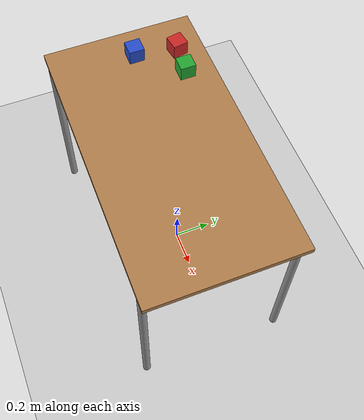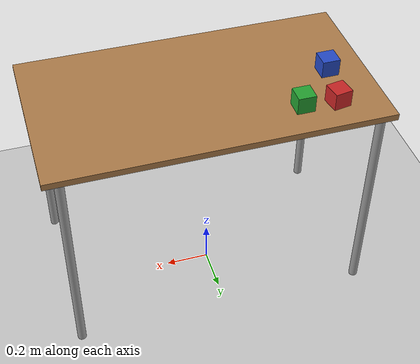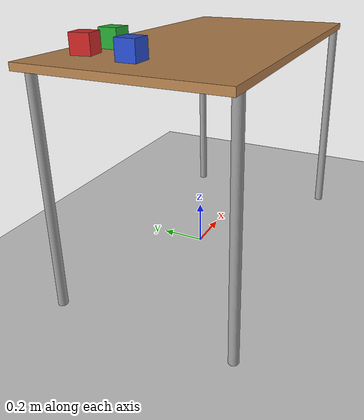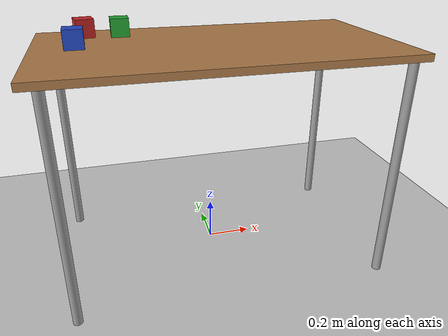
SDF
<sdf version="1.6">
 <world name="default">
  <model name="ground_plane">
   <static>1</static>
   <link name="link">
    <collision name="collision">
     <geometry><plane><normal>0 0 1</normal><size>100 100</size></plane></geometry>
     <surface>
      <contact><collide_bitmask>65535</collide_bitmask></contact>
      <friction><ode><mu>100</mu><mu2>50</mu2></ode></friction>
     </surface>
    </collision>
    <visual name="visual">
     <cast_shadows>0</cast_shadows>
     <geometry><plane><normal>0 0 1</normal><size>100 100</size></plane></geometry>
     <material>
      <script><uri>file://media/materials/scripts/gazebo.material</uri><name>Gazebo/Grey</name></script>
     </material>
    </visual>
   </link>
  </model>
  <light name="sun" type="directional">
   <pose>0 0 10 0 -0 0</pose>
   <diffuse>0.8 0.8 0.8 1</diffuse>
   <specular>0.2 0.2 0.2 1</specular>
   <attenuation>
    <range>1000</range>
    <constant>0.9</constant>
    <linear>0.01</linear>
    <quadratic>0.001</quadratic>
   </attenuation>
   <direction>-0.5 0.1 -0.9</direction>
  </light>
  <physics name="default_physics" default="0" type="ode">
   <max_step_size>0.001</max_step_size>
   <real_time_factor>1</real_time_factor>
   <real_time_update_rate>1000</real_time_update_rate>
  </physics>
  <gravity>0 0 -9.81</gravity>
  <magnetic_field>6e-06 2.3e-05 -4.2e-05</magnetic_field>
  <atmosphere type="adiabatic"/>
  <scene><ambient>0.4 0.4 0.4 1</ambient><background>0.7 0.7 0.7 1</background><shadows>1</shadows></scene>
  <audio><device>default</device></audio>
  <spherical_coordinates>
   <surface_model>EARTH_WGS84</surface_model>
   <latitude_deg>0</latitude_deg>
   <longitude_deg>0</longitude_deg>
   <elevation>0</elevation>
   <heading_deg>0</heading_deg>
  </spherical_coordinates>
  <model name="table_clone">
   <static>1</static>
   <link name="link">
    <collision name="surface">
     <pose>0 0 1 0 -0 0</pose>
     <geometry><box><size>1.5 0.8 0.03</size></box></geometry>
     <surface><friction><ode><mu>0.6</mu><mu2>0.6</mu2></ode></friction></surface>
    </collision>
    <visual name="visual1">
     <pose>0 0 1 0 -0 0</pose>
     <geometry><box><size>1.5 0.8 0.03</size></box></geometry>
     <material>
      <script><uri>file://media/materials/scripts/gazebo.material</uri><name>Gazebo/Wood</name></script>
     </material>
    </visual>
    <collision name="front_left_leg">
     <pose>0.68 0.38 0.5 0 -0 0</pose>
     <geometry><cylinder><radius>0.02</radius><length>1</length></cylinder></geometry>
    </collision>
    <visual name="front_left_leg">
     <pose>0.68 0.38 0.5 0 -0 0</pose>
     <geometry><cylinder><radius>0.02</radius><length>1</length></cylinder></geometry>
     <material>
      <script><uri>file://media/materials/scripts/gazebo.material</uri><name>Gazebo/Grey</name></script>
     </material>
    </visual>
    <collision name="front_right_leg">
     <pose>0.68 -0.38 0.5 0 -0 0</pose>
     <geometry><cylinder><radius>0.02</radius><length>1</length></cylinder></geometry>
    </collision>
    <visual name="front_right_leg">
     <pose>0.68 -0.38 0.5 0 -0 0</pose>
     <geometry><cylinder><radius>0.02</radius><length>1</length></cylinder></geometry>
     <material>
      <script><uri>file://media/materials/scripts/gazebo.material</uri><name>Gazebo/Grey</name></script>
     </material>
    </visual>
    <collision name="back_right_leg">
     <pose>-0.68 -0.38 0.5 0 -0 0</pose>
     <geometry><cylinder><radius>0.02</radius><length>1</length></cylinder></geometry>
    </collision>
    <visual name="back_right_leg">
     <pose>-0.68 -0.38 0.5 0 -0 0</pose>
     <geometry><cylinder><radius>0.02</radius><length>1</length></cylinder></geometry>
     <material>
      <script><uri>file://media/materials/scripts/gazebo.material</uri><name>Gazebo/Grey</name></script>
     </material>
    </visual>
    <collision name="back_left_leg">
     <pose>-0.68 0.38 0.5 0 -0 0</pose>
     <geometry><cylinder><radius>0.02</radius><length>1</length></cylinder></geometry>
    </collision>
    <visual name="back_left_leg">
     <pose>-0.68 0.38 0.5 0 -0 0</pose>
     <geometry><cylinder><radius>0.02</radius><length>1</length></cylinder></geometry>
     <material>
      <script><uri>file://media/materials/scripts/gazebo.material</uri><name>Gazebo/Grey</name></script>
     </material>
    </visual>
   </link>
   <pose>0.016255 -0.067797 0 0 -0 0</pose>
  </model>
  <model name="GreenBox">
   <link name="link">
    <inertial>
     <mass>0.29</mass>
     <inertia>
      <ixx>0.00193333</ixx>
      <ixy>0</ixy>
      <ixz>0</ixz>
      <iyy>0.00193333</iyy>
      <iyz>0</iyz>
      <izz>0.00193333</izz>
     </inertia>
    </inertial>
    <visual name="visual">
     <geometry><box><size>0.08 0.08 0.08</size></box></geometry>
     <material>
      <script><name>Gazebo/Green</name><uri>file://media/materials/scripts/gazebo.material</uri></script>
      <shader type="vertex"><normal_map>__default__</normal_map></shader>
      <ambient>0 0.3 0 1</ambient>
      <diffuse>0.7 0.7 0.7 1</diffuse>
      <specular>0.01 0.01 0.01 1</specular>
      <emissive>0 0 0 1</emissive>
     </material>
    </visual>
    <collision name="collision">
     <geometry><box><size>0.081 0.081 0.081</size></box></geometry>
     <surface>
      <friction>
       <ode><mu>1</mu><mu2>1</mu2><fdir1>0 0 0</fdir1><slip1>0</slip1><slip2>0</slip2></ode>
       <torsional>
        <coefficient>1</coefficient>
        <patch_radius>0</patch_radius>
        <surface_radius>0</surface_radius>
        <use_patch_radius>1</use_patch_radius>
        <ode><slip>0</slip></ode>
       </torsional>
      </friction>
      <bounce><restitution_coefficient>0</restitution_coefficient><threshold>1e+06</threshold></bounce>
      <contact>
       <collide_without_contact>0</collide_without_contact>
       <collide_without_contact_bitmask>1</collide_without_contact_bitmask>
       <collide_bitmask>1</collide_bitmask>
       <ode>
        <soft_cfm>0</soft_cfm>
        <soft_erp>0.2</soft_erp>
        <kp>1e+13</kp>
        <kd>1</kd>
        <max_vel>0.01</max_vel>
        <min_depth>0</min_depth>
       </ode>
       <bullet>
        <split_impulse>1</split_impulse>
        <split_impulse_penetration_threshold>-0.01</split_impulse_penetration_threshold>
        <soft_cfm>0</soft_cfm>
        <soft_erp>0.2</soft_erp>
        <kp>1e+13</kp>
        <kd>1</kd>
       </bullet>
      </contact>
     </surface>
    </collision>
   </link>
   <static>0</static>
   <pose>-0.364447 0.17556 1.05549 -0 -0 0.001837</pose>
  </model>
  <model name="RedBox">
   <link name="link">
    <inertial>
     <mass>0.29</mass>
     <inertia>
      <ixx>0.00193333</ixx>
      <ixy>0</ixy>
      <ixz>0</ixz>
      <iyy>0.00193333</iyy>
      <iyz>0</iyz>
      <izz>0.00193333</izz>
     </inertia>
    </inertial>
    <visual name="visual">
     <geometry><box><size>0.08 0.08 0.08</size></box></geometry>
     <material>
      <script><name>Gazebo/Red</name><uri>file://media/materials/scripts/gazebo.material</uri></script>
      <shader type="vertex"><normal_map>__default__</normal_map></shader>
      <ambient>0.3 0 0 1</ambient>
      <diffuse>0.7 0.7 0.7 1</diffuse>
      <specular>0.01 0.01 0.01 1</specular>
      <emissive>0 0 0 1</emissive>
     </material>
    </visual>
    <collision name="collision">
     <geometry><box><size>0.081 0.081 0.081</size></box></geometry>
     <surface>
      <friction>
       <ode><mu>1</mu><mu2>1</mu2><fdir1>0 0 0</fdir1><slip1>0</slip1><slip2>0</slip2></ode>
       <torsional>
        <coefficient>1</coefficient>
        <patch_radius>0</patch_radius>
        <surface_radius>0</surface_radius>
        <use_patch_radius>1</use_patch_radius>
        <ode><slip>0</slip></ode>
       </torsional>
      </friction>
      <bounce><restitution_coefficient>0</restitution_coefficient><threshold>1e+06</threshold></bounce>
      <contact>
       <collide_without_contact>0</collide_without_contact>
       <collide_without_contact_bitmask>1</collide_without_contact_bitmask>
       <collide_bitmask>1</collide_bitmask>
       <ode>
        <soft_cfm>0</soft_cfm>
        <soft_erp>0.2</soft_erp>
        <kp>1e+13</kp>
        <kd>1</kd>
        <max_vel>0.01</max_vel>
        <min_depth>0</min_depth>
       </ode>
       <bullet>
        <split_impulse>1</split_impulse>
        <split_impulse_penetration_threshold>-0.01</split_impulse_penetration_threshold>
        <soft_cfm>0</soft_cfm>
        <soft_erp>0.2</soft_erp>
        <kp>1e+13</kp>
        <kd>1</kd>
       </bullet>
      </contact>
     </surface>
    </collision>
   </link>
   <static>0</static>
   <pose>-0.516594 0.188857 1.0555 0 -1.3e-05 0.168067</pose>
  </model>
  <model name="BlueBox">
   <link name="link">
    <inertial>
     <mass>0.29</mass>
     <inertia>
      <ixx>0.00193333</ixx>
      <ixy>0</ixy>
      <ixz>0</ixz>
      <iyy>0.00193333</iyy>
      <iyz>0</iyz>
      <izz>0.00193333</izz>
     </inertia>
    </inertial>
    <visual name="visual">
     <geometry><box><size>0.08 0.08 0.08</size></box></geometry>
     <material>
      <script><name>Gazebo/Blue</name><uri>file://media/materials/scripts/gazebo.material</uri></script>
      <shader type="vertex"><normal_map>__default__</normal_map></shader>
      <ambient>0 0 0.3 1</ambient>
      <diffuse>0.7 0.7 0.7 1</diffuse>
      <specular>0.01 0.01 0.01 1</specular>
      <emissive>0 0 0 1</emissive>
     </material>
    </visual>
    <collision name="collision">
     <geometry><box><size>0.081 0.081 0.081</size></box></geometry>
     <surface>
      <friction>
       <ode><mu>1</mu><mu2>1</mu2><fdir1>0 0 0</fdir1><slip1>0</slip1><slip2>0</slip2></ode>
       <torsional>
        <coefficient>1</coefficient>
        <patch_radius>0</patch_radius>
        <surface_radius>0</surface_radius>
        <use_patch_radius>1</use_patch_radius>
        <ode><slip>0</slip></ode>
       </torsional>
      </friction>
      <bounce><restitution_coefficient>0</restitution_coefficient><threshold>1e+06</threshold></bounce>
      <contact>
       <collide_without_contact>0</collide_without_contact>
       <collide_without_contact_bitmask>1</collide_without_contact_bitmask>
       <collide_bitmask>1</collide_bitmask>
       <ode>
        <soft_cfm>0</soft_cfm>
        <soft_erp>0.2</soft_erp>
        <kp>1e+13</kp>
        <kd>1</kd>
        <max_vel>0.01</max_vel>
        <min_depth>0</min_depth>
       </ode>
       <bullet>
        <split_impulse>1</split_impulse>
        <split_impulse_penetration_threshold>-0.01</split_impulse_penetration_threshold>
        <soft_cfm>0</soft_cfm>
        <soft_erp>0.2</soft_erp>
        <kp>1e+13</kp>
        <kd>1</kd>
       </bullet>
      </contact>
     </surface>
    </collision>
   </link>
   <static>0</static>
   <pose>-0.556281 -0.029343 1.05549 -1.3e-05 2.6e-05 0.009845</pose>
  </model>
 </world>
</sdf>
